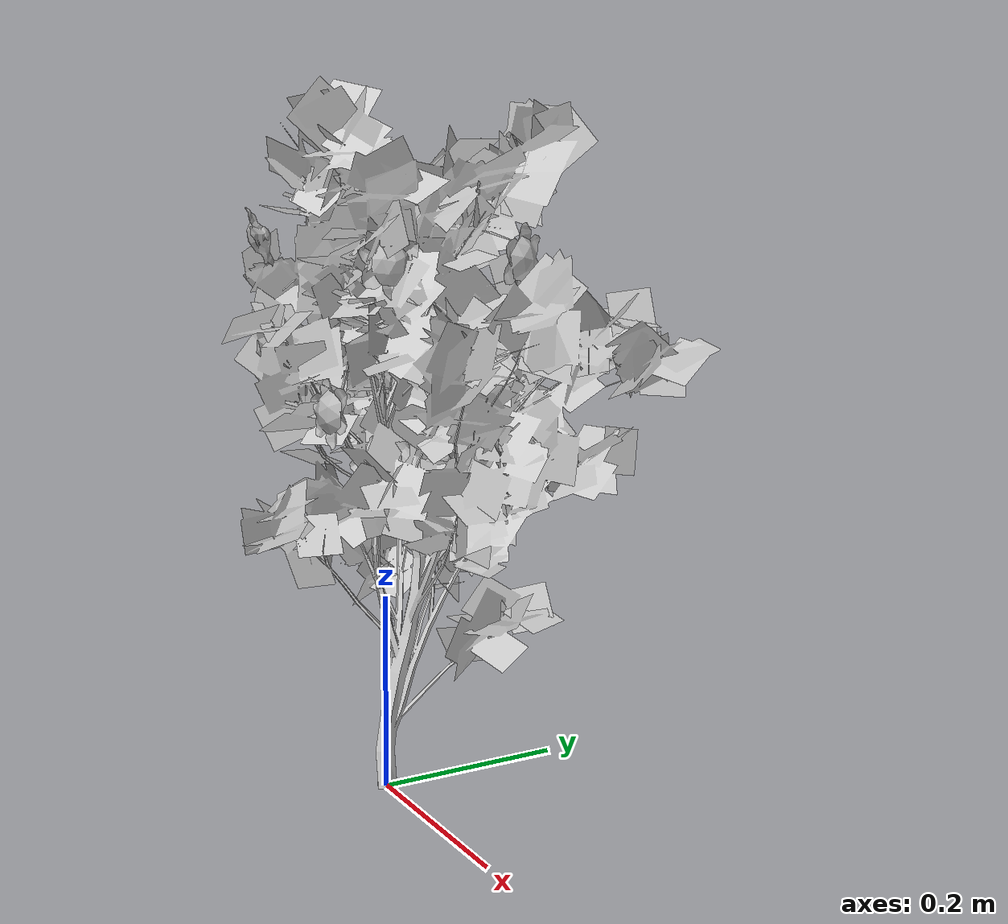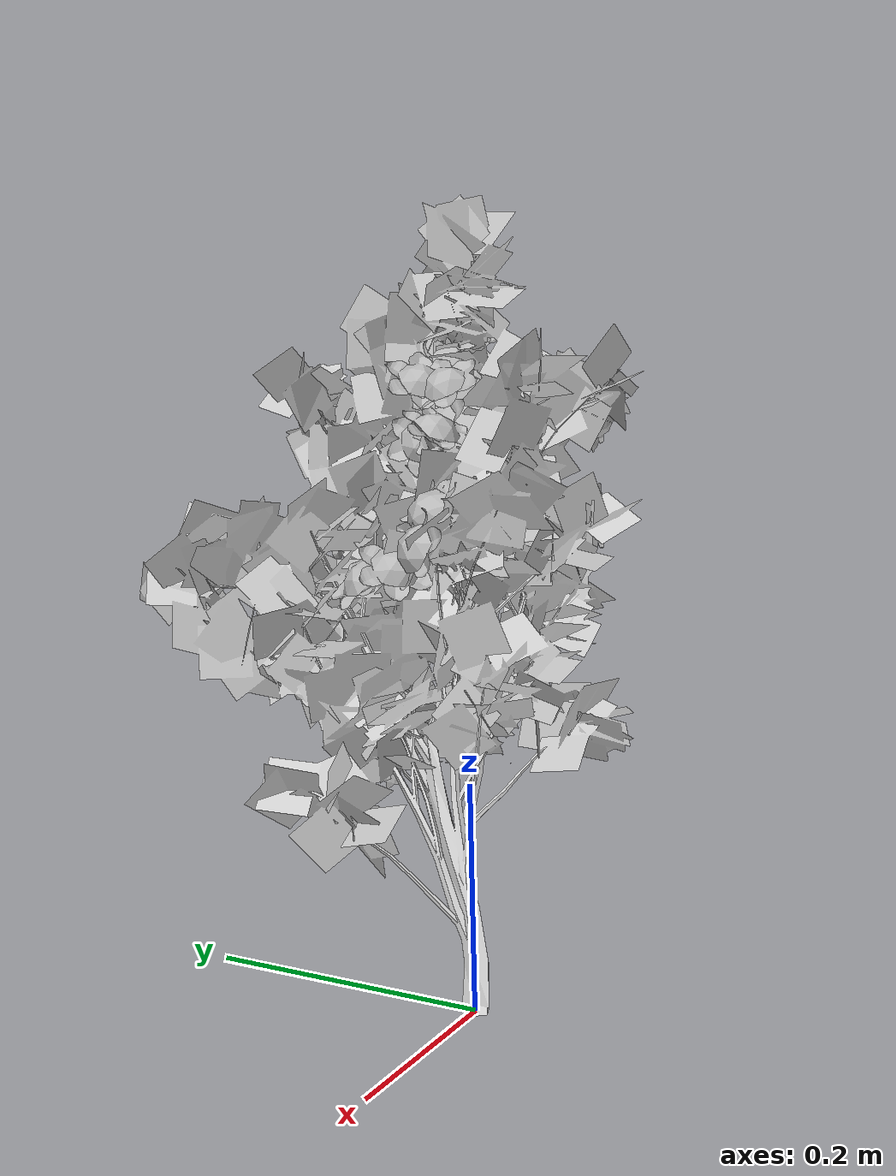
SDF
<?xml version="1.0" ?>
<sdf version="1.6">
  <model name="tree-flowers">
    <!--Skew-Seed:2514486521-->
    <static>true</static>
    <link name="link"/>
    <include>
      <uri>model://tree-mesh</uri>
      <pose>0 0 0 0 0 0</pose>
    </include>
    <joint name="tree_joint" type="fixed">
      <child>tree-mesh::link</child>
      <parent>link</parent>
    </joint>
    <include>
      <name>bramble_0</name>
      <uri>model://bramble</uri>
      <pose> -0.12932927069847783 0.05895232756927108 0.5740316520915296 -2.569535892829647 2.24538438482975 0.0</pose>
    </include>
    <joint name="flower_joint_0" type="fixed">
      <child>bramble_0::flower_link</child>
      <parent>link</parent>
    </joint>
    <include>
      <name>bramble_1</name>
      <uri>model://bramble</uri>
      <pose> -0.09068190361198053 -0.07842997504292101 0.4566640749801619 -3.9521943569960767 1.2737435548477427 0.0</pose>
    </include>
    <joint name="flower_joint_1" type="fixed">
      <child>bramble_1::flower_link</child>
      <parent>link</parent>
    </joint>
    <include>
      <name>bramble_2</name>
      <uri>model://bramble</uri>
      <pose> -0.11700051796375346 0.10341568560431183 0.3271193245710135 -1.857366078176176 0.8028816270346567 0.0</pose>
    </include>
    <joint name="flower_joint_2" type="fixed">
      <child>bramble_2::flower_link</child>
      <parent>link</parent>
    </joint>
    <include>
      <name>bramble_3</name>
      <uri>model://bramble</uri>
      <pose> -0.13334486010002458 0.09985991584869276 0.4443409840645537 -3.0852417034506416 1.889113486499666 0.0</pose>
    </include>
    <joint name="flower_joint_3" type="fixed">
      <child>bramble_3::flower_link</child>
      <parent>link</parent>
    </joint>
    <include>
      <name>bramble_4</name>
      <uri>model://bramble</uri>
      <pose> -0.12223473250933249 0.08126269986168137 0.47097973267290855 -1.7865863618239357 1.0878030109595285 0.0</pose>
    </include>
    <joint name="flower_joint_4" type="fixed">
      <child>bramble_4::flower_link</child>
      <parent>link</parent>
    </joint>
    <include>
      <name>bramble_5</name>
      <uri>model://bramble</uri>
      <pose> -0.11677651806811434 -0.07762183072815103 0.5652158542598245 -4.103478371378888 0.9492202736540212 0.0</pose>
    </include>
    <joint name="flower_joint_5" type="fixed">
      <child>bramble_5::flower_link</child>
      <parent>link</parent>
    </joint>
    <include>
      <name>bramble_6</name>
      <uri>model://bramble</uri>
      <pose> -0.08856741887240735 0.11513054504691377 0.3210202068780758 -2.9132290012505653 1.53342408877919 0.0</pose>
    </include>
    <joint name="flower_joint_6" type="fixed">
      <child>bramble_6::flower_link</child>
      <parent>link</parent>
    </joint>
    <include>
      <name>bramble_7</name>
      <uri>model://bramble</uri>
      <pose> -0.07854745770448811 0.06536575277672232 0.49197266237434467 -1.7081085987715543 1.6200149509201505 0.0</pose>
    </include>
    <joint name="flower_joint_7" type="fixed">
      <child>bramble_7::flower_link</child>
      <parent>link</parent>
    </joint>
    <include>
      <name>bramble_8</name>
      <uri>model://bramble</uri>
      <pose> 0.05108836398725379 -0.07437394884160642 0.3962630690653351 1.4291050956722946 1.4581117558837504 0.0</pose>
    </include>
    <joint name="flower_joint_8" type="fixed">
      <child>bramble_8::flower_link</child>
      <parent>link</parent>
    </joint>
    <include>
      <name>bramble_9</name>
      <uri>model://bramble</uri>
      <pose> 0.06932419898805678 -0.03255680568056491 0.5310162099931268 -0.005616911602807473 1.4384021904322304 0.0</pose>
    </include>
    <joint name="flower_joint_9" type="fixed">
      <child>bramble_9::flower_link</child>
      <parent>link</parent>
    </joint>
    <include>
      <name>bramble_10</name>
      <uri>model://bramble</uri>
      <pose> 0.09238624718914637 0.06831233966985456 0.3450963926438308 -1.028245526416156 1.1620579613907265 0.0</pose>
    </include>
    <joint name="flower_joint_10" type="fixed">
      <child>bramble_10::flower_link</child>
      <parent>link</parent>
    </joint>
    <include>
      <name>bramble_11</name>
      <uri>model://bramble</uri>
      <pose> -0.134416835909109 0.11480463697482833 0.4970487370985526 -2.95651361393047 1.5755664813106987 0.0</pose>
    </include>
    <joint name="flower_joint_11" type="fixed">
      <child>bramble_11::flower_link</child>
      <parent>link</parent>
    </joint>
    <include>
      <name>bramble_12</name>
      <uri>model://bramble</uri>
      <pose> -0.14928391229933394 0.09573048738570962 0.48807078210956417 -2.3332989918730216 1.6968975427186503 0.0</pose>
    </include>
    <joint name="flower_joint_12" type="fixed">
      <child>bramble_12::flower_link</child>
      <parent>link</parent>
    </joint>
    <include>
      <name>bramble_13</name>
      <uri>model://bramble</uri>
      <pose> 0.11143416632983769 0.07896202990297276 0.538022182134178 -0.5042357463550698 1.696172365597668 0.0</pose>
    </include>
    <joint name="flower_joint_13" type="fixed">
      <child>bramble_13::flower_link</child>
      <parent>link</parent>
    </joint>
    <include>
      <name>bramble_14</name>
      <uri>model://bramble</uri>
      <pose> -0.07987113403433255 0.08328542936143454 0.489853212030383 -2.7453660242805547 1.0702640338259721 0.0</pose>
    </include>
    <joint name="flower_joint_14" type="fixed">
      <child>bramble_14::flower_link</child>
      <parent>link</parent>
    </joint>
    <include>
      <name>bramble_15</name>
      <uri>model://bramble</uri>
      <pose> -0.11727501217637182 0.07430764590976899 0.5569755909177689 -3.023056589838495 1.1742010247632537 0.0</pose>
    </include>
    <joint name="flower_joint_15" type="fixed">
      <child>bramble_15::flower_link</child>
      <parent>link</parent>
    </joint>
    <include>
      <name>bramble_16</name>
      <uri>model://bramble</uri>
      <pose> 0.06378463797510299 -0.030913582574779913 0.3397615967832048 0.8065355054504579 1.1583652734342 0.0</pose>
    </include>
    <joint name="flower_joint_16" type="fixed">
      <child>bramble_16::flower_link</child>
      <parent>link</parent>
    </joint>
    <include>
      <name>bramble_17</name>
      <uri>model://bramble</uri>
      <pose> -0.05854841625060671 0.1235472584123838 0.3279418954605223 -2.048390604387428 2.1360487764542238 0.0</pose>
    </include>
    <joint name="flower_joint_17" type="fixed">
      <child>bramble_17::flower_link</child>
      <parent>link</parent>
    </joint>
    <include>
      <name>bramble_18</name>
      <uri>model://bramble</uri>
      <pose> -0.128674236725222 0.09905834378661389 0.3585929655650245 -1.98919074471128 1.4647510828220403 0.0</pose>
    </include>
    <joint name="flower_joint_18" type="fixed">
      <child>bramble_18::flower_link</child>
      <parent>link</parent>
    </joint>
  </model>
</sdf>

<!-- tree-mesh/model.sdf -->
<sdf version="1.6">
  <model name="tree-mesh">
    <static>true</static>
    <link name="link">

      <collision name="collision">
        <geometry>
          <mesh>
            <uri>model://tree-mesh/meshes/new_tree.dae</uri>
            <scale>0.0625 0.0625 0.0625</scale>
          </mesh>
        </geometry>
      </collision>

      <!-- simplified collision for sake of speed since leaves shouldn't be blocking anyway -->

      <visual name="leaves">
        <geometry>
          <mesh>
            <uri>model://tree-mesh/meshes/leaves.dae</uri>
            <scale>0.0325 0.0325 0.0325</scale>
          </mesh>
        </geometry>
        <material>
          <script>
            <uri>model://tree-mesh/materials/scripts/</uri>
            <uri>model://tree-mesh/materials/textures/</uri>
            <name>NewTree/Branch</name>
          </script>
        </material>
      </visual>
      <visual name="bark">
        <geometry>
          <mesh>
            <uri>model://tree-mesh/meshes/bark.dae</uri>
            <scale>0.0325 0.0325 0.0325</scale>
          </mesh>
        </geometry>
        <material>
          <script>
            <uri>model://tree-mesh/materials/scripts/</uri>
            <uri>model://tree-mesh/materials/textures/</uri>
            <name>NewTree/Bark</name>
          </script>
        </material>
      </visual>
    </link>
  </model>
</sdf>

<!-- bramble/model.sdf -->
<sdf version="1.6">
  <model name="bramble-flower">
    <static>true</static>
    <link name="flower_link">
      <collision name="body_collision">
        <geometry>
          <mesh>
            <uri>model://bramble/meshes/bramble.dae</uri>
            <scale>0.4 0.4 0.4</scale>
          </mesh>
        </geometry>
      </collision>
      <visual name="petals">
        <geometry>
          <mesh>
            <uri>model://bramble/meshes/bramble.dae</uri>
            <scale>0.4 0.4 0.4</scale>
            <submesh>
              <name>petal</name>
            </submesh>
          </mesh>
        </geometry>
        <material>
          <script>
            <uri>model://bramble/materials/scripts/</uri>
            <uri>model://bramble/materials/textures/</uri>
            <name>Bramble/Petal</name>
          </script>
        </material>
      </visual>
      <visual name="carpel">
        <geometry>
          <mesh>
            <uri>model://bramble/meshes/bramble.dae</uri>
            <scale>0.4 0.4 0.4</scale>
            <submesh>
              <name>carpel</name>
            </submesh>
          </mesh>
        </geometry>
        <material>
          <script>
            <uri>model://bramble/materials/scripts/</uri>
            <uri>model://bramble/materials/textures/</uri>
            <name>Bramble/Carpel</name>
          </script>
        </material>
      </visual>
      <visual name="stamen">
        <geometry>
          <mesh>
            <uri>model://bramble/meshes/bramble.dae</uri>
            <scale>0.4 0.4 0.4</scale>
            <submesh>
              <name>stamen</name>
            </submesh>
          </mesh>
        </geometry>
        <material>
          <script>
            <uri>model://bramble/materials/scripts/</uri>
            <uri>model://bramble/materials/textures/</uri>
            <name>Bramble/Stamen</name>
          </script>
        </material>
      </visual>
    </link>
  </model>
</sdf>
